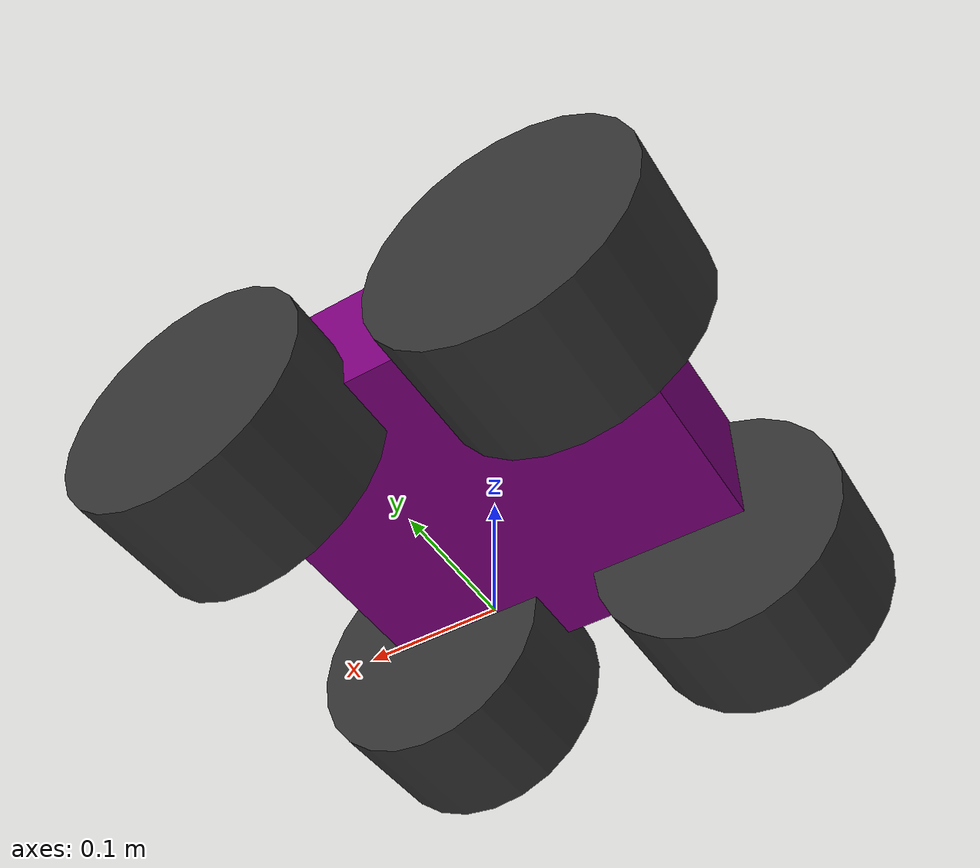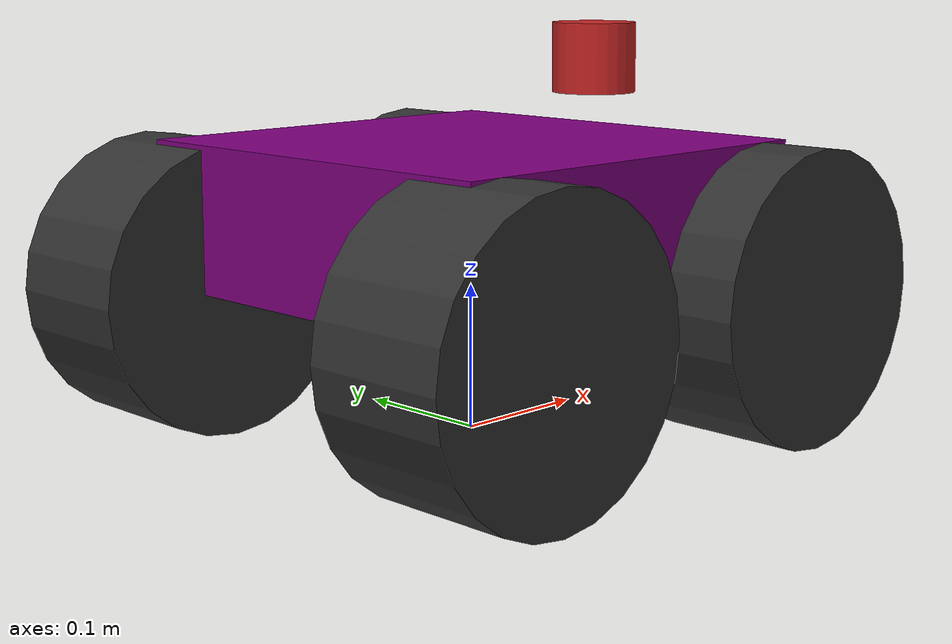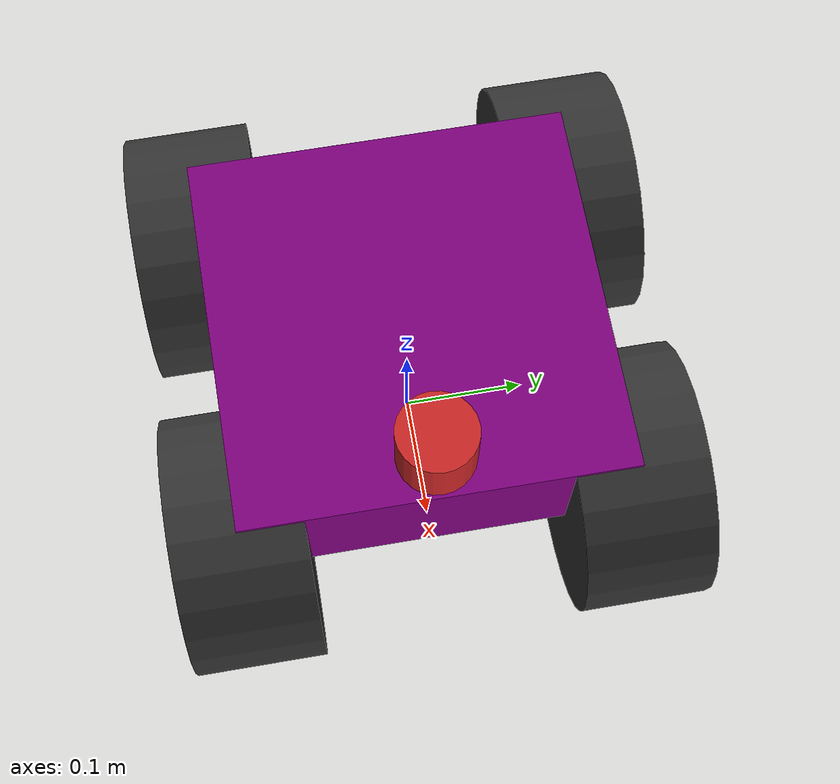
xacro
<?xml version="1.0"?>
<robot xmlns:xacro="http://www.ros.org/wiki/xacro" name="tracked_robot">

    <!-- Robot Properties -->
    <xacro:property name="chassis_length" value="0.3"/>
    <xacro:property name="chassis_width" value="0.3"/>
    <xacro:property name="chassis_height" value="0.1"/>
    <xacro:property name="chassis_mass" value="5.0"/>

    <xacro:property name="wheel_separation" value="0.3"/>
    <xacro:property name="wheel_radius" value="0.1"/>
    <xacro:property name="wheel_width" value="0.1"/>
    <xacro:property name="wheel_mass" value="0.5"/>
    <xacro:property name="wheel_x_spacing" value="0.25"/>
    <xacro:property name="PI" value="3.1415926535897931"/>

    <!-- Inertial Macros -->
    <xacro:macro name="inertial_box" params="mass x y z">
        <inertial>
            <mass value="${mass}"/>
            <inertia ixx="${(1/12) * mass * (y*y + z*z)}" ixy="0.0" ixz="0.0"
                     iyy="${(1/12) * mass * (x*x + z*z)}" iyz="0.0"
                     izz="${(1/12) * mass * (x*x + y*y)}"/>
        </inertial>
    </xacro:macro>

    <xacro:macro name="inertial_cylinder_y" params="mass radius length">
      <inertial>
        <mass value="${mass}"/>
        <inertia ixx="${(1/12)*mass*(3*radius*radius + length*length)}" ixy="0.0" ixz="0.0"
                 iyy="${(1/2)*mass*radius*radius}" iyz="0.0"
                 izz="${(1/12)*mass*(3*radius*radius + length*length)}"/>
      </inertial>
    </xacro:macro>

    <!-- Robot Links and Joints -->
    <link name="base_footprint"/>

    <link name="base_link">
        <visual>
            <geometry><box size="${chassis_length} ${chassis_width} ${chassis_height}"/></geometry>
            <material name="chassis_purple"><color rgba="0.5 0.0 0.5 1.0"/></material>
        </visual>
        <collision name="base_link_collision">
            <geometry><box size="${chassis_length} ${chassis_width} ${chassis_height}"/></geometry>
        </collision>
        <xacro:inertial_box mass="${chassis_mass}" x="${chassis_length}" y="${chassis_width}" z="${chassis_height}"/>
    </link>
    <gazebo reference="base_link">
        <material>Gazebo/Purple</material>
    </gazebo>

    <joint name="base_footprint_joint" type="fixed">
        <parent link="base_footprint"/>
        <child link="base_link"/>
        <origin xyz="0 0 ${chassis_height/2 + wheel_radius}" rpy="0 0 0"/>
    </joint>

    <xacro:macro name="wheel" params="prefix side side_y_reflect x_offset">
        <link name="${prefix}_${side}_wheel_link">
            <visual>
                <origin xyz="0 0 0" rpy="${PI/2} 0 0"/>
                <geometry><cylinder radius="${wheel_radius}" length="${wheel_width}"/></geometry>
                <material name="wheel_grey"><color rgba="0.2 0.2 0.2 1"/></material>
            </visual>
            <collision>
                <origin xyz="0 0 0" rpy="${PI/2} 0 0"/>
                <geometry><cylinder radius="${wheel_radius}" length="${wheel_width}"/></geometry>
            </collision>
            <xacro:inertial_cylinder_y mass="${wheel_mass}" radius="${wheel_radius}" length="${wheel_width}"/>
        </link>

        <joint name="${prefix}_${side}_wheel_joint" type="continuous">
            <parent link="base_link"/>
            <child link="${prefix}_${side}_wheel_link"/>
            <origin xyz="${x_offset} ${side_y_reflect * wheel_separation/2} -${chassis_height/2}" rpy="0 0 0"/>
            <axis xyz="0 1 0"/>
        </joint>

        <gazebo reference="${prefix}_${side}_wheel_link">
            <material>Gazebo/DarkGrey</material>
            <xacro:if value="${prefix == 'rear'}">
                <mu1>100.0</mu1>
                <mu2>1.0</mu2>
            </xacro:if>
            <xacro:if value="${prefix == 'front'}">
                <mu1>100.0</mu1>
                <mu2>1.0</mu2>
            </xacro:if>
        </gazebo>
    </xacro:macro>

    <xacro:wheel prefix="front" side="left"  side_y_reflect="1"  x_offset="${wheel_x_spacing/2}"/>
    <xacro:wheel prefix="rear"  side="left"  side_y_reflect="1"  x_offset="-${wheel_x_spacing/2}"/>
    <xacro:wheel prefix="front" side="right" side_y_reflect="-1" x_offset="${wheel_x_spacing/2}"/>
    <xacro:wheel prefix="rear"  side="right" side_y_reflect="-1" x_offset="-${wheel_x_spacing/2}"/>

    <!-- Lidar Sensor -->
    <link name="laser_link">
        <visual><geometry><cylinder radius="0.03" length="0.05"/></geometry></visual>
        <collision><geometry><cylinder radius="0.03" length="0.05"/></geometry></collision>
        <xacro:inertial_box mass="0.1" x="0.06" y="0.06" z="0.05"/>
    </link>

    <joint name="laser_joint" type="fixed">
        <parent link="base_link"/>
        <child link="laser_link"/>
        <origin xyz="${chassis_length/2 - 0.025} 0 ${chassis_height/2 + 0.05}" rpy="0 0 0"/>
    </joint>

<!-- Gazebo Plugins -->
    <gazebo>
        <!-- Plugin for the REAR wheels -->
        <plugin name="diff_drive_rear" filename="libgazebo_ros_diff_drive.so">
            <ros>
                <remapping>cmd_vel:=/cmd_vel</remapping>
                <remapping>odom:=/odom</remapping> <!-- This plugin will publish odometry -->
            </ros>

            <!-- Rear wheels -->
            <left_joint>rear_left_wheel_joint</left_joint>
            <right_joint>rear_right_wheel_joint</right_joint>

            <wheel_separation>${wheel_separation}</wheel_separation>
            <wheel_diameter>${2*wheel_radius}</wheel_diameter>
            <max_wheel_torque>200</max_wheel_torque>
            <max_wheel_acceleration>5.0</max_wheel_acceleration>

            <!-- Odometry configuration -->
            <odometry_frame>odom</odometry_frame>
            <robot_base_frame>base_footprint</robot_base_frame>
            <publish_odom>true</publish_odom>
            <publish_odom_tf>true</publish_odom_tf>
        </plugin>

        <!-- Plugin for the FRONT wheels -->
        <plugin name="diff_drive_front" filename="libgazebo_ros_diff_drive.so">
            <ros>
                <remapping>cmd_vel:=/cmd_vel</remapping>
            </ros>

            <!-- Front wheels -->
            <left_joint>front_left_wheel_joint</left_joint>
            <right_joint>front_right_wheel_joint</right_joint>

            <wheel_separation>${wheel_separation}</wheel_separation>
            <wheel_diameter>${2*wheel_radius}</wheel_diameter>
            <max_wheel_torque>200</max_wheel_torque>
            <max_wheel_acceleration>5.0</max_wheel_acceleration>

            <!-- Disable odometry from this plugin to avoid conflicts -->
            <publish_odom>false</publish_odom>
            <publish_odom_tf>false</publish_odom_tf>
        </plugin>
    </gazebo>

    <gazebo reference="laser_link">
        <material>Gazebo/Red</material>
        <sensor name="laser" type="ray">
            <visualize>true</visualize>
            <update_rate>10</update_rate>
            <ray>
                <scan>
                    <horizontal>
                        <samples>360</samples>
                        <min_angle>-${PI}</min_angle>
                        <max_angle>${PI}</max_angle>
                    </horizontal>
                </scan>
                <range>
                    <min>0.14</min>
                    <max>2.0</max>
                </range>
            </ray>
            <plugin name="laser_controller" filename="libgazebo_ros_ray_sensor.so">
                <ros>
                    <namespace>/laser_controller</namespace>
                    <remapping>~/out:=scan</remapping>
                </ros>
                <output_type>sensor_msgs/LaserScan</output_type>
                <frame_name>laser_link</frame_name>
            </plugin>
        </sensor>
    </gazebo>
</robot>
